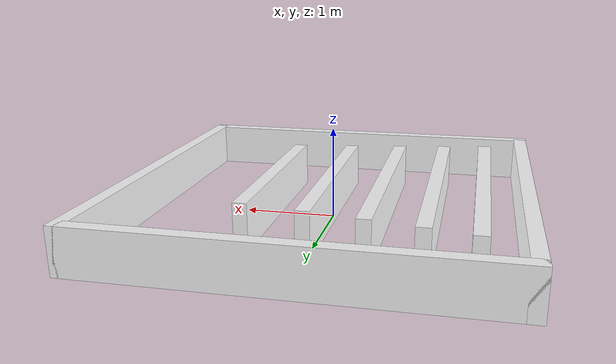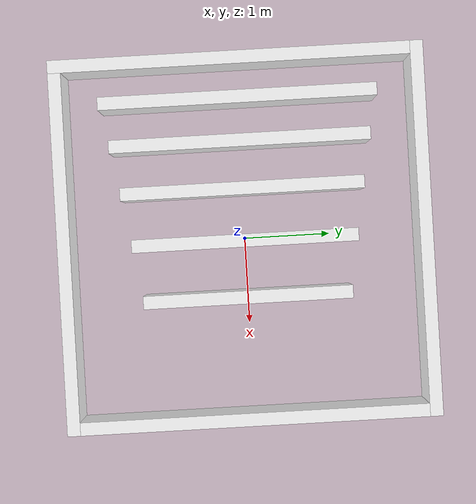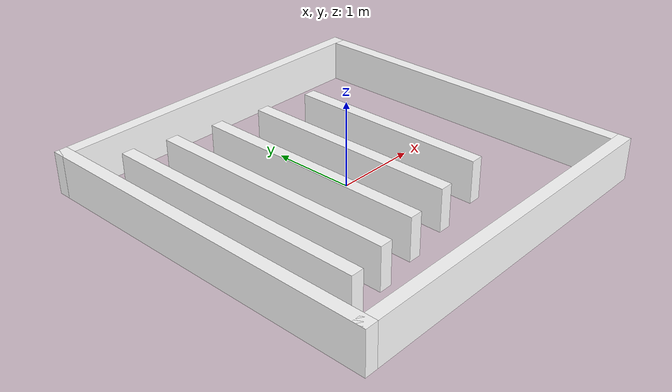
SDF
<?xml version='1.0'?>
<sdf version='1.6'>
  <model name='simple'>
    <link name='fixed'></link>
    <pose frame=''>0 0 0 0 -0 0</pose>
    <link name='Wall_0'>
      <collision name='Wall_0_Collision'>
        <geometry>
          <box>
            <size>4.3 0.15 0.5</size>
          </box>
        </geometry>
        <pose frame=''>0 0 0.25 0 -0 0</pose>
      </collision>
      <visual name='Wall_0_Visual'>
        <pose frame=''>0 0 0.25 0 -0 0</pose>
        <geometry>
          <box>
            <size>4.3 0.15 0.5</size>
          </box>
        </geometry>
        <material>
          <ambient>1 1 1 1</ambient>
        </material>
      </visual>
      <pose frame=''>0 2.075 0 0 -0 0</pose>
    </link>
    <link name='Wall_1'>
      <collision name='Wall_1_Collision'>
        <geometry>
          <box>
            <size>4.3 0.15 0.5</size>
          </box>
        </geometry>
        <pose frame=''>0 0 0.25 0 -0 0</pose>
      </collision>
      <visual name='Wall_1_Visual'>
        <pose frame=''>0 0 0.25 0 -0 0</pose>
        <geometry>
          <box>
            <size>4.3 0.15 0.5</size>
          </box>
        </geometry>
        <material>
          <ambient>1 1 1 1</ambient>
        </material>
      </visual>
      <pose frame=''>-2.075 0 0 0 0 -1.5708</pose>
    </link>
    <link name='Wall_2'>
      <collision name='Wall_2_Collision'>
        <geometry>
          <box>
            <size>4.3 0.15 0.5</size>
          </box>
        </geometry>
        <pose frame=''>0 0 0.25 0 -0 0</pose>
      </collision>
      <visual name='Wall_2_Visual'>
        <pose frame=''>0 0 0.25 0 -0 0</pose>
        <geometry>
          <box>
            <size>4.3 0.15 0.5</size>
          </box>
        </geometry>
        <material>
          <ambient>1 1 1 1</ambient>
        </material>
      </visual>
      <pose frame=''>0 -2.075 0 0 -0 0</pose>
    </link>
    <link name='Wall_3'>
      <collision name='Wall_3_Collision'>
        <geometry>
          <box>
            <size>4.3 0.15 0.5</size>
          </box>
        </geometry>
        <pose frame=''>0 0 0.25 0 -0 0</pose>
      </collision>
      <visual name='Wall_3_Visual'>
        <pose frame=''>0 0 0.25 0 -0 0</pose>
        <geometry>
          <box>
            <size>4.3 0.15 0.5</size>
          </box>
        </geometry>
        <material>
          <ambient>1 1 1 1</ambient>
        </material>
      </visual>
      <pose frame=''>2.075 0 0 0 -0 1.5708</pose>
    </link>
    <link name='Corridor_Wall_1'>
      <collision name='Corridor_Wall_1_Collision'>
        <geometry>
          <box>
            <size>3.2 0.15 0.5</size>
          </box>
        </geometry>
        <pose frame=''>0 0 0.25 0 -0 0</pose>
      </collision>
      <visual name='Corridor_Wall_1_Visual'>
        <pose frame=''>0 0 0.25 0 -0 0</pose>
        <geometry>
          <box>
            <size>3.2 0.15 0.5</size>
          </box>
        </geometry>
        <material>
          <ambient>1 1 1 1</ambient>
        </material>
      </visual>
      <pose frame=''>-1.625 0 0 0 0 -1.5708</pose>
    </link>
    <link name='Corridor_Wall_2'>
      <collision name='Corridor_Wall_2_Collision'>
        <geometry>
          <box>
            <size>3.0 0.15 0.5</size>
          </box>
        </geometry>
        <pose frame=''>0 0 0.25 0 -0 0</pose>
      </collision>
      <visual name='Corridor_Wall_2_Visual'>
        <pose frame=''>0 0 0.25 0 -0 0</pose>
        <geometry>
          <box>
            <size>3.0 0.15 0.5</size>
          </box>
        </geometry>
        <material>
          <ambient>1 1 1 1</ambient>
        </material>
      </visual>
      <pose frame=''>-1.125 0 0 0 0 -1.5708</pose>
    </link>
    <link name='Corridor_Wall_3'>
      <collision name='Corridor_Wall_3_Collision'>
        <geometry>
          <box>
            <size>2.8 0.15 0.5</size>
          </box>
        </geometry>
        <pose frame=''>0 0 0.25 0 -0 0</pose>
      </collision>
      <visual name='Corridor_Wall_3_Visual'>
        <pose frame=''>0 0 0.25 0 -0 0</pose>
        <geometry>
          <box>
            <size>2.8 0.15 0.5</size>
          </box>
        </geometry>
        <material>
          <ambient>1 1 1 1</ambient>
        </material>
      </visual>
      <pose frame=''>-0.575 0 0 0 0 -1.5708</pose>
    </link>
    <link name='Corridor_Wall_4'>
      <collision name='Corridor_Wall_4_Collision'>
        <geometry>
          <box>
            <size>2.6 0.15 0.5</size>
          </box>
        </geometry>
        <pose frame=''>0 0 0.25 0 -0 0</pose>
      </collision>
      <visual name='Corridor_Wall_4_Visual'>
        <pose frame=''>0 0 0.25 0 -0 0</pose>
        <geometry>
          <box>
            <size>2.6 0.15 0.5</size>
          </box>
        </geometry>
        <material>
          <ambient>1 1 1 1</ambient>
        </material>
      </visual>
      <pose frame=''>0.025 0 0 0 0 -1.5708</pose>
    </link>
    <link name='Corridor_Wall_5'>
      <collision name='Corridor_Wall_5_Collision'>
        <geometry>
          <box>
            <size>2.4 0.15 0.5</size>
          </box>
        </geometry>
        <pose frame=''>0 0 0.25 0 -0 0</pose>
      </collision>
      <visual name='Corridor_Wall_5_Visual'>
        <pose frame=''>0 0 0.25 0 -0 0</pose>
        <geometry>
          <box>
            <size>2.4 0.15 0.5</size>
          </box>
        </geometry>
        <material>
          <ambient>1 1 1 1</ambient>
        </material>
      </visual>
      <pose frame=''>0.675 0 0 0 0 -1.5708</pose>
    </link>
    <static>1</static>
  </model>
</sdf>
